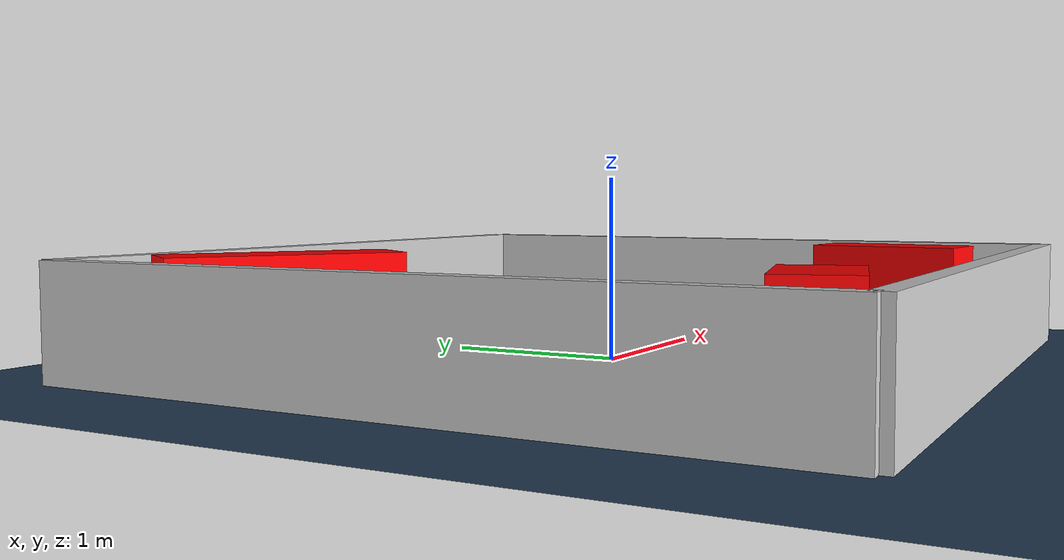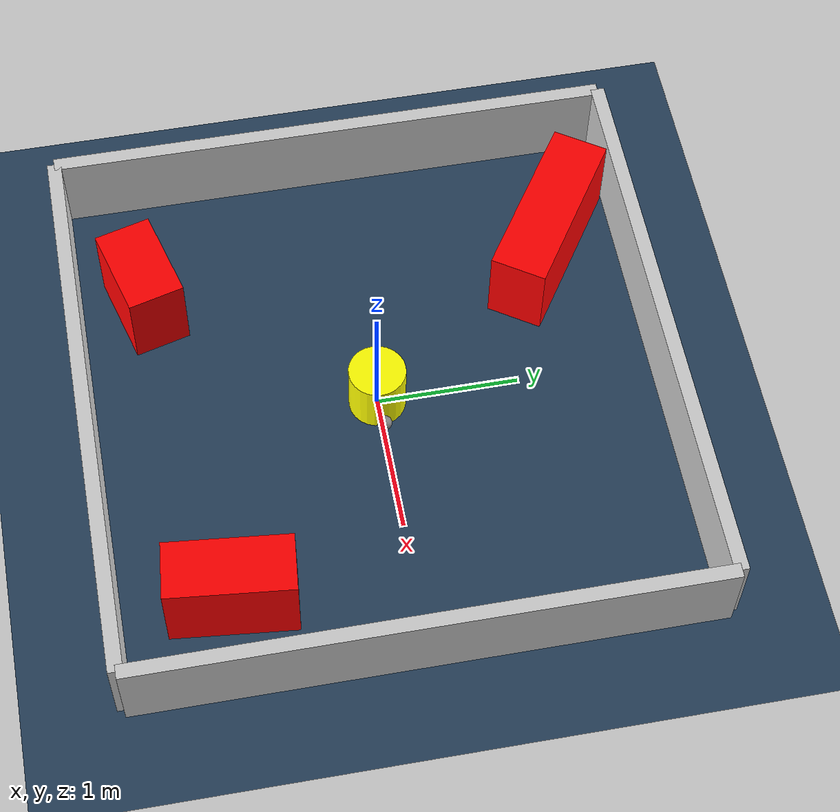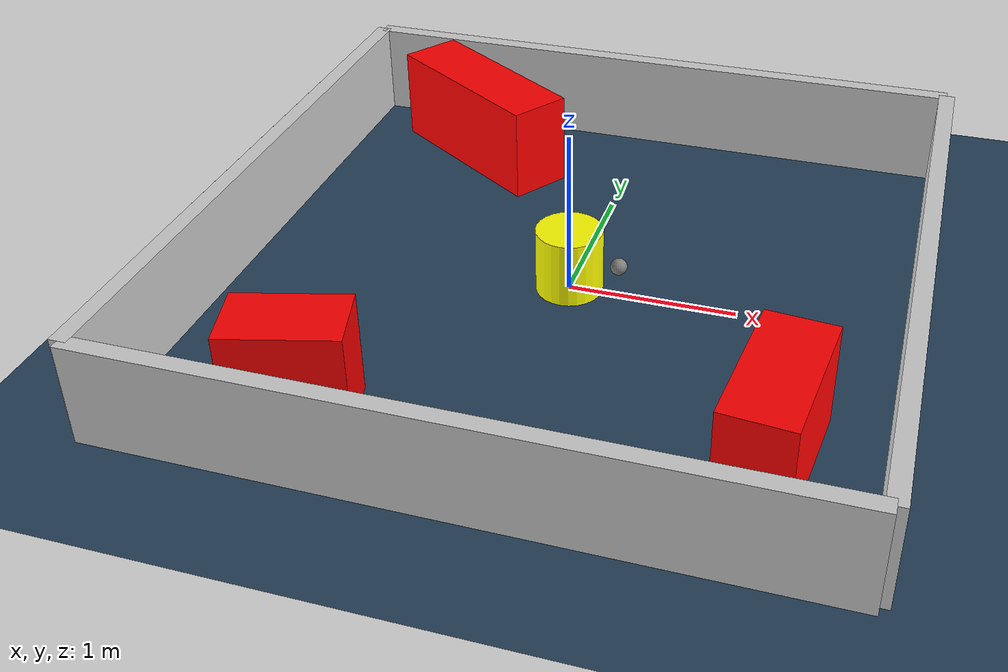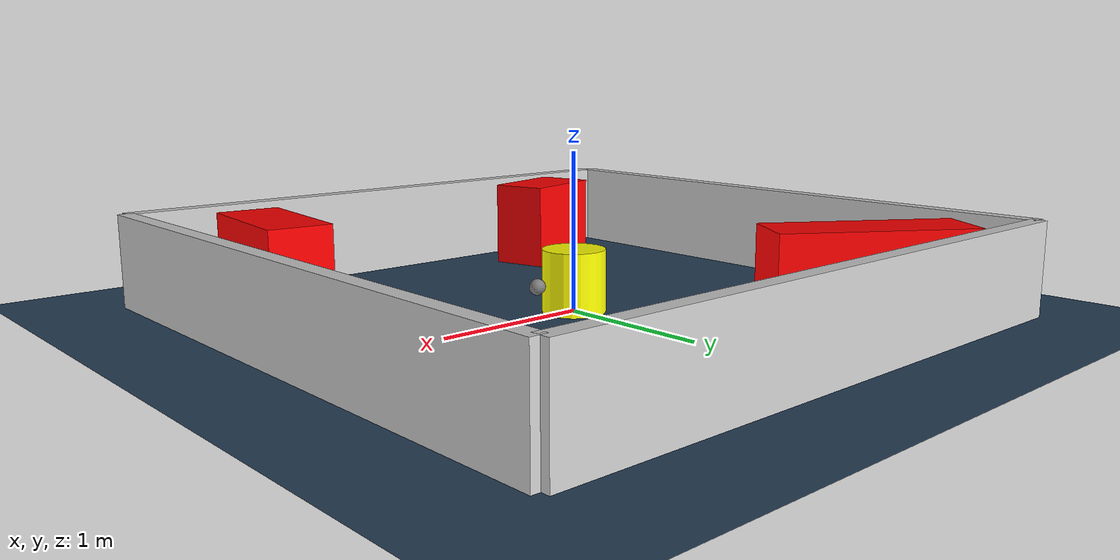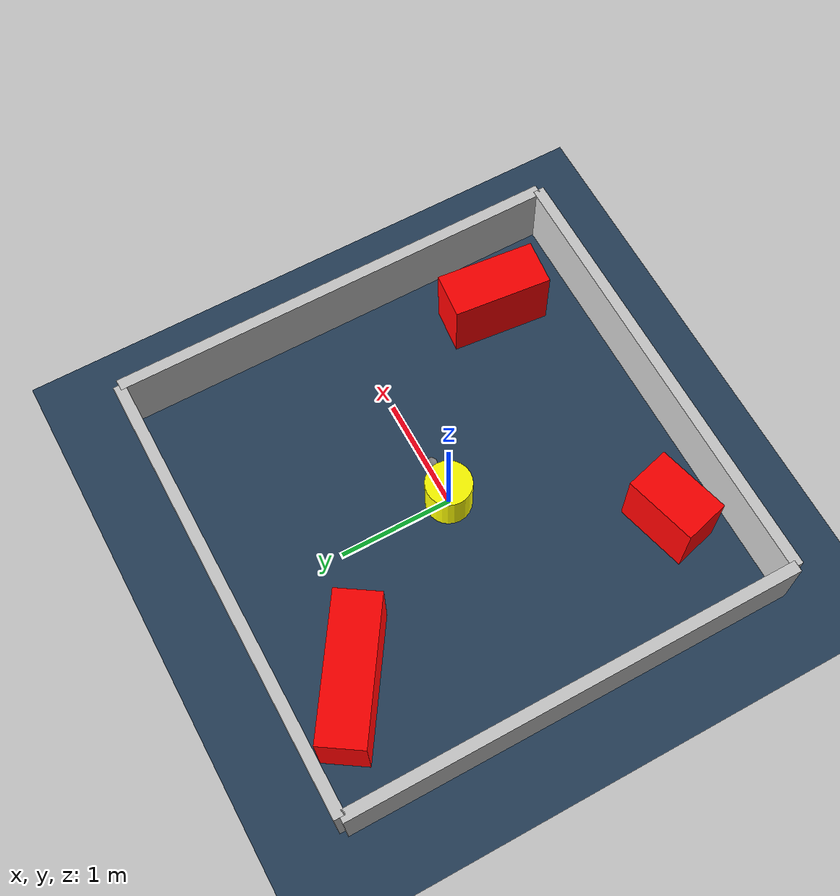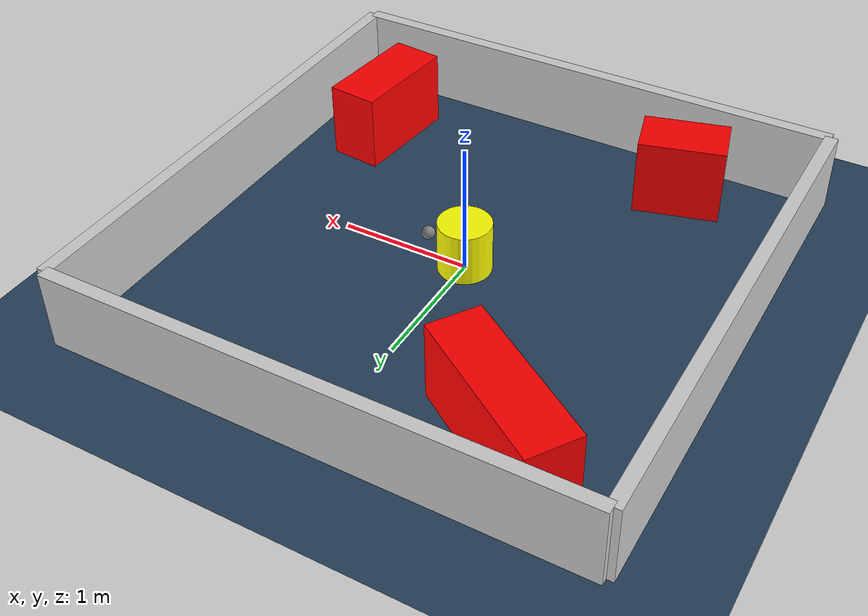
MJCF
<?xml version="1.0" ?>
<mujoco model="generated_environment">
  <option timestep="0.01" integrator="RK4" cone="elliptic"/>
  <default>
    <geom density="1"/>
  </default>
  <asset>
    <texture builtin="gradient" height="3072" rgb1="0.3 0.5 0.7" rgb2="0 0 0" type="skybox" width="512"/>
    <texture builtin="checker" height="300" mark="edge" markrgb="0.8 0.8 0.8" name="groundplane" rgb1="0.2 0.3 0.4" rgb2="0.1 0.2 0.3" type="2d" width="300"/>
    <material name="groundplane" reflectance="0.2" texrepeat="5 5" texture="groundplane" texuniform="true"/>
    <material name="robot" rgba="0.0 1.0 0.0 1"/>
  </asset>
  <worldbody>
    <light dir="0 0 -1" directional="true" pos="0 0 1.5"/>
    <geom condim="4" friction="1.0 0.005 0.001" material="groundplane" name="floor" size="0 0 0.05" type="plane"/>
    <body name="walls">
      <geom name="wall_1" condim="4" pos="-2.0 0.0 0.3" rgba="0.800000011920929 0.800000011920929 0.800000011920929 1.0" size="0.05 2.0 0.3" type="box"/>
      <geom name="wall_2" condim="4" pos="2.0 0.0 0.3" rgba="0.800000011920929 0.800000011920929 0.800000011920929 1.0" size="0.05 2.0 0.3" type="box"/>
      <geom name="wall_3" condim="4" pos="0.0 -2.0 0.3" rgba="0.800000011920929 0.800000011920929 0.800000011920929 1.0" size="2.0 0.05 0.3" type="box"/>
      <geom name="wall_4" condim="4" pos="0.0 2.0 0.3" rgba="0.800000011920929 0.800000011920929 0.800000011920929 1.0" size="2.0 0.05 0.3" type="box"/>
    </body>
    <body name="robot">
      <joint name="joint_x" type="slide" pos="0 0 0" axis="1 0 0"/>
      <joint name="joint_y" type="slide" pos="0 0 0" axis="0 1 0"/>
      <geom name="robot" type="sphere" pos="0.3 0.0 0.2" size="0.05" mass="5." friction="1.0 0.005 0.0001" condim="4" rgba="0.5 0.5 0.5 1.0"/>
      <site name="sensor_ball"/>
    </body>
    <body name="obstacle_movable_1">
      <geom name="obstacle_movable_1" condim="4" pos="0.0 0.0 0.2" euler="0 0 0.0" friction="1.0 0.005 0.001" rgba="1.0 1.0 0.0 1.0" size="0.2 0.2 0.0" type="cylinder" mass="0.1"/>
      <joint type="free"/>
    </body>
    <body name="obstacle_2_static">
      <geom name="obstacle_2_static" condim="4" pos="-1.0394172887999453 -1.499578866572162 0.3" euler="0 0 195.10035636132784" friction="1.0 0.005 0.001" rgba="1 0 0 1" size="0.3257806679084643 0.2 0.3" type="box"/>
    </body>
    <body name="obstacle_3_static">
      <geom name="obstacle_3_static" condim="4" pos="1.3985856654633906 -1.2098651699617728 0.3" euler="0 0 264.29839769902395" friction="1.0 0.005 0.001" rgba="1 0 0 1" size="0.433095214944504 0.2 0.3" type="box"/>
    </body>
    <body name="obstacle_4_static">
      <geom name="obstacle_4_static" condim="4" pos="-1.0372516596889823 1.4293361482661446 0.3" euler="0 0 146.53862640296862" friction="1.0 0.005 0.001" rgba="1 0 0 1" size="0.6196928255453582 0.2 0.3" type="box"/>
    </body>
  </worldbody>
  <actuator>
    <motor name="actuator_x" joint="joint_x" gear="1" ctrlrange="-1 1"/>
    <motor name="actuator_y" joint="joint_y" gear="1" ctrlrange="-1 1"/>
  </actuator>
</mujoco>
